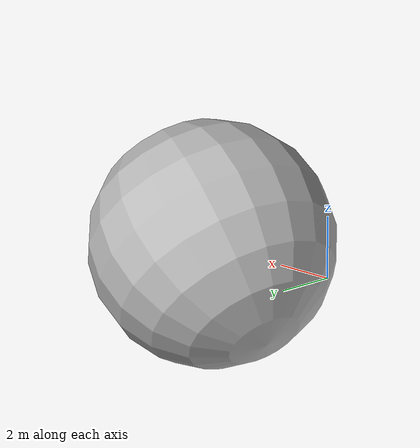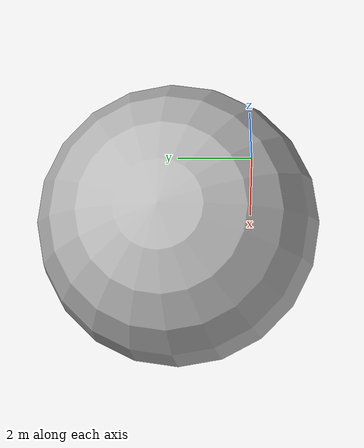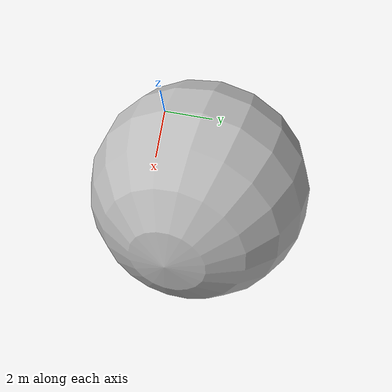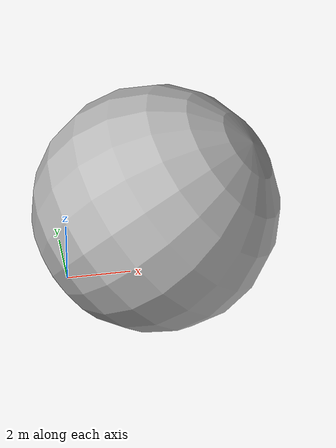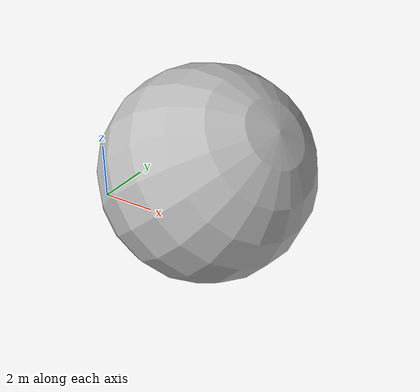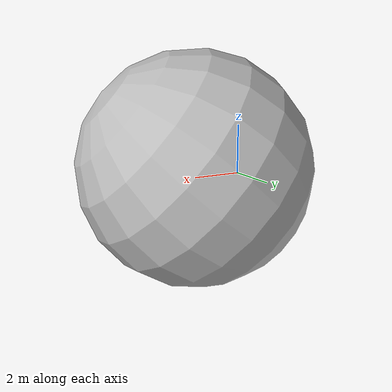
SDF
<?xml version='1.0'?>
<sdf version='1.6'>
		<model name="TESTP">
			<self_collide>true</self_collide>
			<pose>0.0 0.0 0.0 0.0 0.0 0.0</pose>
			<!-- Start of parts of the pmodel TESTP -->
			<!-- End of parts of the pmodel TESTP -->

			<!-- Start of links of the pmodel TESTP -->
			<!-- link full name is TESTP::Wheel -->
			<link name="1-Wheel">
					<pose>0.0 -1.0 0.0 1.5707499980926514 0.0 0.0</pose>
					<inertial>
						<pose>0.0 0.0 0.0 0.0 0.0 0.0</pose>
						<inertia>
							<ixx>1.0</ixx>
							<ixy>0.0</ixy>
							<ixz>0.0</ixz>
							<iyy>1.0</iyy>
							<iyz>0.0</iyz>
							<izz>1.0</izz>
						</inertia>
						<mass>1.0</mass>
					</inertial>
			</link>
			<!-- link full name is TESTP::Track -->
			<link name="2-Track">
					<pose>0.0 0.0 0.0 0.0 0.0 0.0</pose>
					<inertial>
						<pose>0.0 0.0 0.0 0.0 0.0 0.0</pose>
						<inertia>
							<ixx>1.0</ixx>
							<ixy>0.0</ixy>
							<ixz>0.0</ixz>
							<iyy>1.0</iyy>
							<iyz>0.0</iyz>
							<izz>1.0</izz>
						</inertia>
						<mass>1.0</mass>
					</inertial>
					<!-- body full name is TESTP::Track::my_body -->
					<collision name="1--my_body">
						<laser_retro>0.0</laser_retro>
						<pose>3.1414999961853027 2.0 0.8999999761581421 3.0 4.0 0.0</pose>
						<geometry>
							<sphere>
								<radius>4.0</radius>
							</sphere>
						</geometry>
						<surface>
							<bounce>
								<restitution_coefficient>0.0</restitution_coefficient>
								<threshold>100000.0</threshold>
							</bounce>
							<friction>
								<ode>
									<mu>1.0</mu>
									<mu2>1.0</mu2>
									<fdir1>0.0 0.0 0.0</fdir1>
									<slip1>0.0</slip1>
									<slip2>0.0</slip2>
								</ode>
								<torsional>
									<coefficient>1.0</coefficient>
									<surface_radius>0.0</surface_radius>
								</torsional>
							</friction>
						</surface>
					</collision>
					<visual name="1--my_body">
						<laser_retro>0.0</laser_retro>
						<pose>3.1414999961853027 2.0 0.8999999761581421 3.0 4.0 0.0</pose>
						<geometry>
							<sphere>
								<radius>4.0</radius>
							</sphere>
						</geometry>
						<surface>
							<bounce>
								<restitution_coefficient>0.0</restitution_coefficient>
								<threshold>100000.0</threshold>
							</bounce>
							<friction>
								<ode>
									<mu>1.0</mu>
									<mu2>1.0</mu2>
									<fdir1>0.0 0.0 0.0</fdir1>
									<slip1>0.0</slip1>
									<slip2>0.0</slip2>
								</ode>
								<torsional>
									<coefficient>1.0</coefficient>
									<surface_radius>0.0</surface_radius>
								</torsional>
							</friction>
						</surface>
					</visual>
					<!-- WARNING: The SDF generator relies on annotations of the sensor my_sonar_sensor to specify aspects of the
					sensor that are accounted for in the equations. -->
					<!-- sensor simple name is my_sonar_sensor -->
					<sensor name="my_sonar_sensor" type="sonar">
						<pose>0.0 0.0 0.8999999761581421 2.2831853071795867 1.57079632679 0.0</pose>
						<visualize>true</visualize>
						<always_on>true</always_on>
						<update_rate>1.0</update_rate>
						<sonar>
							<min>4</min>
							<max>4.0</max>
							<radius>-1.0</radius>
						</sonar>
					</sensor>
			</link>
			<!-- End of links of the pmodel TESTP -->

			<!-- Start of joints of the pmodel TESTP -->
			<!-- End of joints of the pmodel TESTP -->

			<!-- Start of fixed connections of the pmodel TESTP -->
			<!-- End of fixed connections of the pmodel TESTP -->
		</model>
</sdf>
